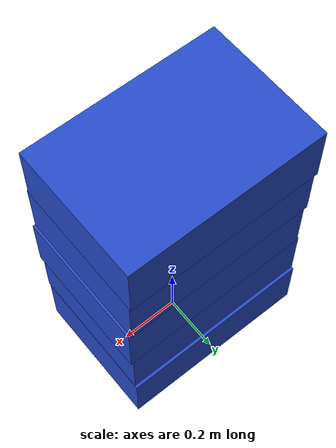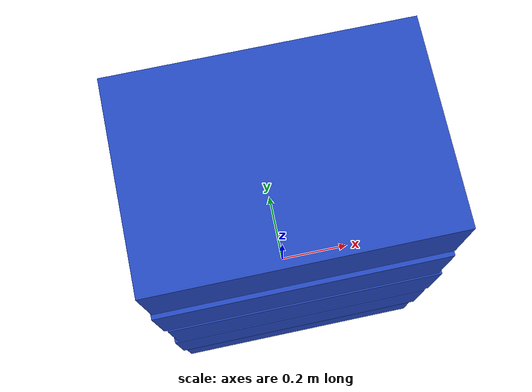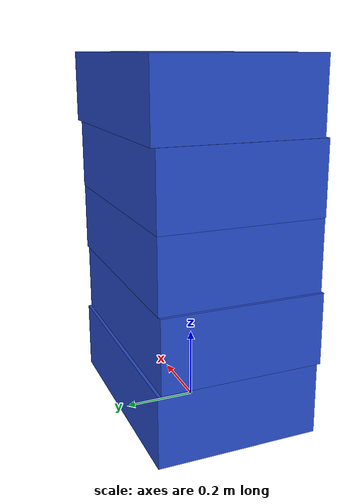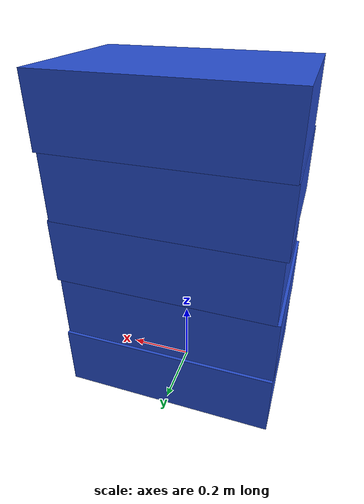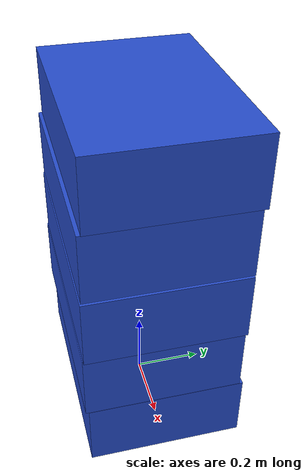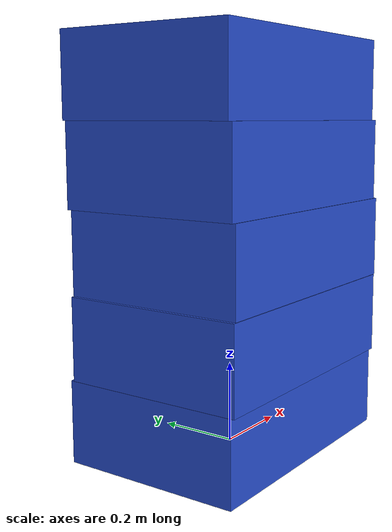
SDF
<?xml version="1.0" encoding="UTF-8"?>
<sdf version='1.4'>
   <model name="baggage_B_x5">
      <model name="baggage_B_0">
         <static>true</static>
         <link name="link">
               <collision name="collision">
                  <geometry>
                     <box>
                        <size>0.65 0.45 0.2</size>
                     </box>
                  </geometry>
               </collision>
               <visual name="visual">
                  <geometry>
                     <box>
                        <size>0.65 0.45 0.2</size>
                     </box>
                  </geometry>
                  <material>
                     <script>
                        <uri>file://media/materials/scripts/gazebo.material</uri>
                        <name>Gazebo/Blue</name>
                     </script>
                  </material>
               </visual>
            </link>
            <pose frame=''>0 0 0.1 0 0 0</pose>
      </model>
      <model name="baggage_B_1">
         <static>true</static>
         <link name="link">
               <collision name="collision">
                  <geometry>
                     <box>
                        <size>0.65 0.45 0.2</size>
                     </box>
                  </geometry>
               </collision>
               <visual name="visual">
                  <geometry>
                     <box>
                        <size>0.65 0.45 0.2</size>
                     </box>
                  </geometry>
                  <material>
                     <script>
                        <uri>file://media/materials/scripts/gazebo.material</uri>
                        <name>Gazebo/Blue</name>
                     </script>
                  </material>
               </visual>
            </link>
            <pose frame=''>-0.0014 -0.0091 0.3 0 0 0</pose>
      </model>
      <model name="baggage_B_2">
         <static>true</static>
         <link name="link">
               <collision name="collision">
                  <geometry>
                     <box>
                        <size>0.65 0.45 0.2</size>
                     </box>
                  </geometry>
               </collision>
               <visual name="visual">
                  <geometry>
                     <box>
                        <size>0.65 0.45 0.2</size>
                     </box>
                  </geometry>
                  <material>
                     <script>
                        <uri>file://media/materials/scripts/gazebo.material</uri>
                        <name>Gazebo/Blue</name>
                     </script>
                  </material>
               </visual>
            </link>
            <pose frame=''>0.0076 -0.0066 0.5 0 0 0</pose>
      </model>
      <model name="baggage_B_3">
         <static>true</static>
         <link name="link">
               <collision name="collision">
                  <geometry>
                     <box>
                        <size>0.65 0.45 0.2</size>
                     </box>
                  </geometry>
               </collision>
               <visual name="visual">
                  <geometry>
                     <box>
                        <size>0.65 0.45 0.2</size>
                     </box>
                  </geometry>
                  <material>
                     <script>
                        <uri>file://media/materials/scripts/gazebo.material</uri>
                        <name>Gazebo/Blue</name>
                     </script>
                  </material>
               </visual>
            </link>
            <pose frame=''>0 -0.0032 0.7 0 0 0</pose>
      </model>
      <model name="baggage_B_4">
         <static>true</static>
         <link name="link">
               <collision name="collision">
                  <geometry>
                     <box>
                        <size>0.65 0.45 0.2</size>
                     </box>
                  </geometry>
               </collision>
               <visual name="visual">
                  <geometry>
                     <box>
                        <size>0.65 0.45 0.2</size>
                     </box>
                  </geometry>
                  <material>
                     <script>
                        <uri>file://media/materials/scripts/gazebo.material</uri>
                        <name>Gazebo/Blue</name>
                     </script>
                  </material>
               </visual>
            </link>
            <pose frame=''>0.0023 0.0073 0.9 0 0 0</pose>
      </model>
   </model>
</sdf>
